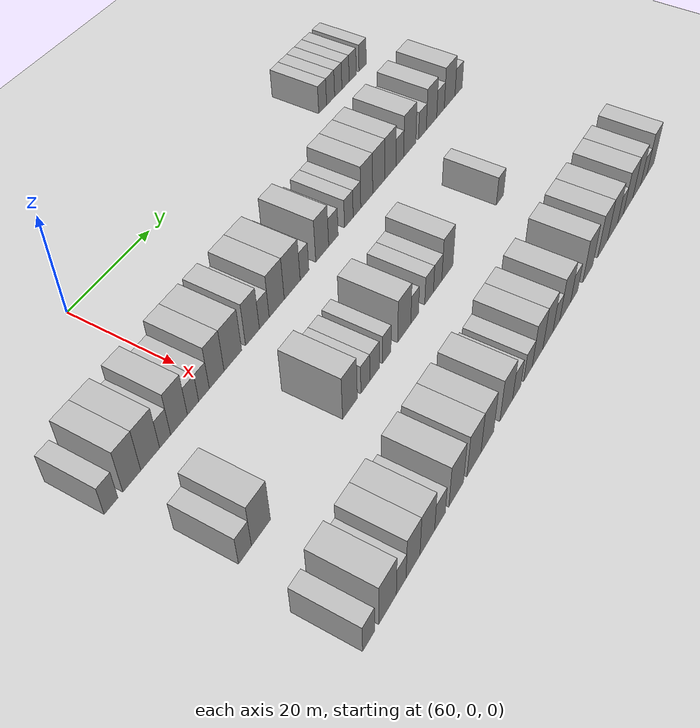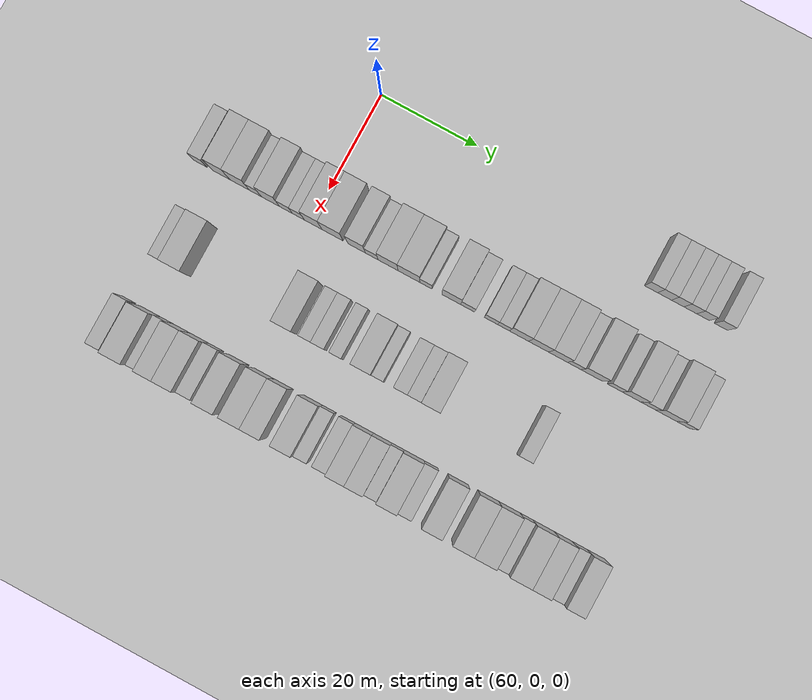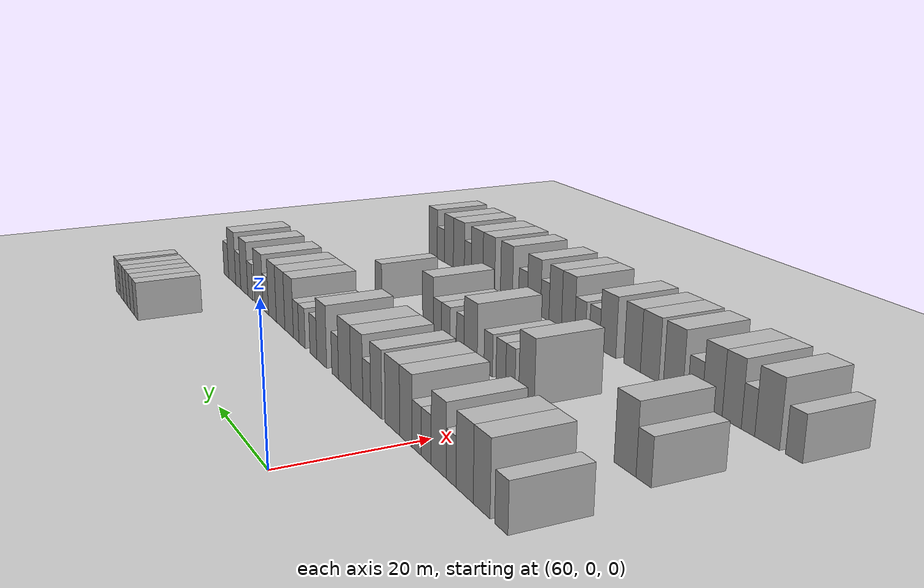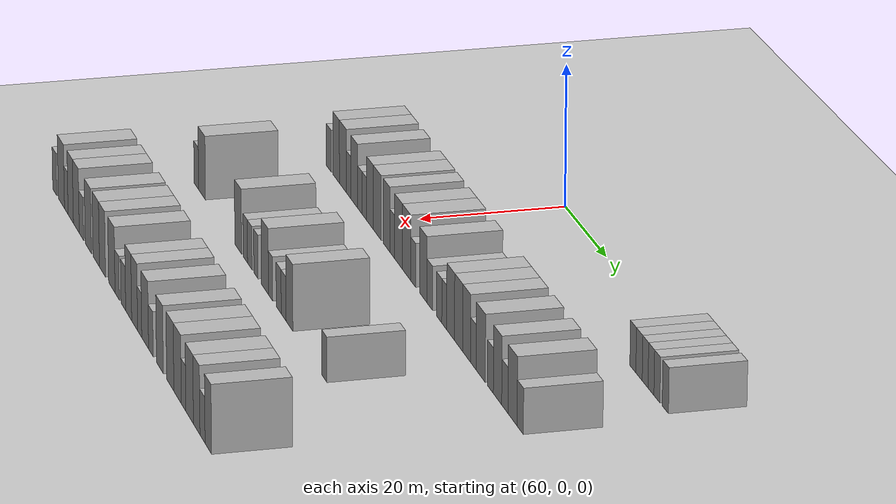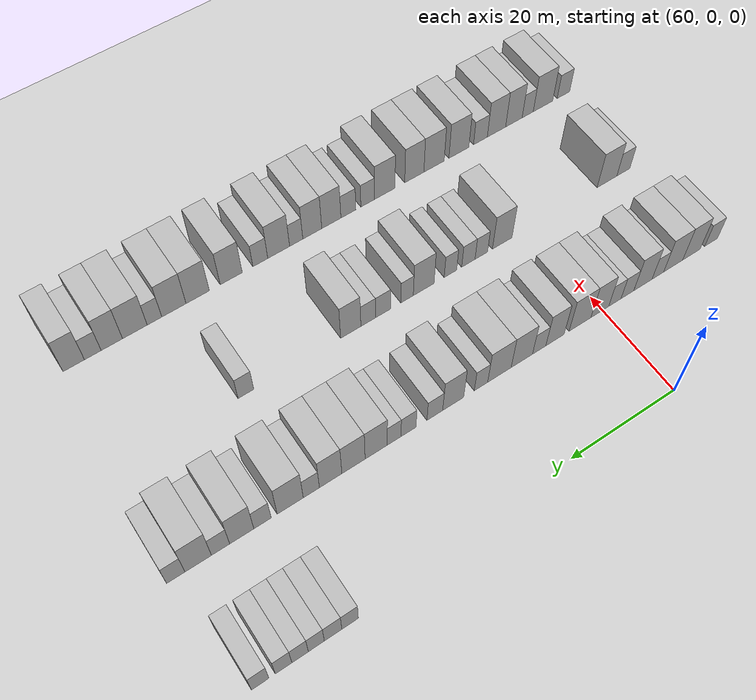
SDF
<sdf version="1.6">
 <world name="default">
  <include>
   <name>ground_plane_2</name>
   <uri>model://HANNAS_ground_plane</uri>
   <pose>100 0 0  0 0 0</pose>
  </include>
  <model name="building_463">
   <static>1</static>
   <pose>63.0000 60.2301 0 0.000000 0.000000 0.000000</pose>
   <link name="link">
    <pose>0 0 3.00 0 0 0</pose>
    <collision name="collision"><geometry><box><size>10.0000 2.7058 6.0000</size></box></geometry></collision>
    <visual name="visual">
     <cast_shadows>0</cast_shadows>
     <geometry><box><size>10.0000 2.7058 6.0000</size></box></geometry>
     <material>
      <script>
       <uri>model://HANNAS_wall/materials/scripts</uri>
       <uri>model://HANNAS_wall/materials/textures</uri>
       <name>vrc/HANNAS_wall</name>
      </script>
     </material>
    </visual>
   </link>
  </model>
  <model name="building_464">
   <static>1</static>
   <pose>63.0000 62.9954 0 0.000000 0.000000 0.000000</pose>
   <link name="link">
    <pose>0 0 3.00 0 0 0</pose>
    <collision name="collision"><geometry><box><size>10.0000 2.8249 6.0000</size></box></geometry></collision>
    <visual name="visual">
     <cast_shadows>0</cast_shadows>
     <geometry><box><size>10.0000 2.8249 6.0000</size></box></geometry>
     <material>
      <script>
       <uri>model://HANNAS_wall/materials/scripts</uri>
       <uri>model://HANNAS_wall/materials/textures</uri>
       <name>vrc/HANNAS_wall</name>
      </script>
     </material>
    </visual>
   </link>
  </model>
  <model name="building_465">
   <static>1</static>
   <pose>63.0000 65.6941 0 0.000000 0.000000 0.000000</pose>
   <link name="link">
    <pose>0 0 3.00 0 0 0</pose>
    <collision name="collision"><geometry><box><size>10.0000 2.5725 6.0000</size></box></geometry></collision>
    <visual name="visual">
     <cast_shadows>0</cast_shadows>
     <geometry><box><size>10.0000 2.5725 6.0000</size></box></geometry>
     <material>
      <script>
       <uri>model://HANNAS_wall/materials/scripts</uri>
       <uri>model://HANNAS_wall/materials/textures</uri>
       <name>vrc/HANNAS_wall</name>
      </script>
     </material>
    </visual>
   </link>
  </model>
  <model name="building_466">
   <static>1</static>
   <pose>63.0000 68.2875 0 0.000000 0.000000 0.000000</pose>
   <link name="link">
    <pose>0 0 3.00 0 0 0</pose>
    <collision name="collision"><geometry><box><size>10.0000 2.6143 6.0000</size></box></geometry></collision>
    <visual name="visual">
     <cast_shadows>0</cast_shadows>
     <geometry><box><size>10.0000 2.6143 6.0000</size></box></geometry>
     <material>
      <script>
       <uri>model://HANNAS_wall/materials/scripts</uri>
       <uri>model://HANNAS_wall/materials/textures</uri>
       <name>vrc/HANNAS_wall</name>
      </script>
     </material>
    </visual>
   </link>
  </model>
  <model name="building_467">
   <static>1</static>
   <pose>63.0000 70.8988 0 0.000000 0.000000 0.000000</pose>
   <link name="link">
    <pose>0 0 3.00 0 0 0</pose>
    <collision name="collision"><geometry><box><size>10.0000 2.6081 6.0000</size></box></geometry></collision>
    <visual name="visual">
     <cast_shadows>0</cast_shadows>
     <geometry><box><size>10.0000 2.6081 6.0000</size></box></geometry>
     <material>
      <script>
       <uri>model://HANNAS_wall/materials/scripts</uri>
       <uri>model://HANNAS_wall/materials/textures</uri>
       <name>vrc/HANNAS_wall</name>
      </script>
     </material>
    </visual>
   </link>
  </model>
  <model name="building_468">
   <static>1</static>
   <pose>63.0000 74.5586 0 0.000000 0.000000 0.000000</pose>
   <link name="link">
    <pose>0 0 3.00 0 0 0</pose>
    <collision name="collision"><geometry><box><size>10.0000 2.7117 6.0000</size></box></geometry></collision>
    <visual name="visual">
     <cast_shadows>0</cast_shadows>
     <geometry><box><size>10.0000 2.7117 6.0000</size></box></geometry>
     <material>
      <script>
       <uri>model://HANNAS_wall/materials/scripts</uri>
       <uri>model://HANNAS_wall/materials/textures</uri>
       <name>vrc/HANNAS_wall</name>
      </script>
     </material>
    </visual>
   </link>
  </model>
  <model name="building_627">
   <static>1</static>
   <pose>82.0000 -22.9002 0 0.000000 0.000000 0.000000</pose>
   <link name="link">
    <pose>0 0 3.00 0 0 0</pose>
    <collision name="collision"><geometry><box><size>10.0000 2.7990 6.0000</size></box></geometry></collision>
    <visual name="visual">
     <cast_shadows>0</cast_shadows>
     <geometry><box><size>10.0000 2.7990 6.0000</size></box></geometry>
     <material>
      <script>
       <uri>model://HANNAS_wall/materials/scripts</uri>
       <uri>model://HANNAS_wall/materials/textures</uri>
       <name>vrc/HANNAS_wall</name>
      </script>
     </material>
    </visual>
   </link>
  </model>
  <model name="building_628">
   <static>1</static>
   <pose>82.0000 -18.6153 0 0.000000 0.000000 0.000000</pose>
   <link name="link">
    <pose>0 0 4.50 0 0 0</pose>
    <collision name="collision"><geometry><box><size>10.0000 3.7706 9.0000</size></box></geometry></collision>
    <visual name="visual">
     <cast_shadows>0</cast_shadows>
     <geometry><box><size>10.0000 3.7706 9.0000</size></box></geometry>
     <material>
      <script>
       <uri>model://HANNAS_wall/materials/scripts</uri>
       <uri>model://HANNAS_wall/materials/textures</uri>
       <name>vrc/HANNAS_wall</name>
      </script>
     </material>
    </visual>
   </link>
  </model>
  <model name="building_629">
   <static>1</static>
   <pose>82.0000 -14.6957 0 0.000000 0.000000 0.000000</pose>
   <link name="link">
    <pose>0 0 4.50 0 0 0</pose>
    <collision name="collision"><geometry><box><size>10.0000 4.0687 9.0000</size></box></geometry></collision>
    <visual name="visual">
     <cast_shadows>0</cast_shadows>
     <geometry><box><size>10.0000 4.0687 9.0000</size></box></geometry>
     <material>
      <script>
       <uri>model://HANNAS_wall/materials/scripts</uri>
       <uri>model://HANNAS_wall/materials/textures</uri>
       <name>vrc/HANNAS_wall</name>
      </script>
     </material>
    </visual>
   </link>
  </model>
  <model name="building_630">
   <static>1</static>
   <pose>82.0000 -11.4387 0 0.000000 0.000000 0.000000</pose>
   <link name="link">
    <pose>0 0 3.00 0 0 0</pose>
    <collision name="collision"><geometry><box><size>10.0000 2.4453 6.0000</size></box></geometry></collision>
    <visual name="visual">
     <cast_shadows>0</cast_shadows>
     <geometry><box><size>10.0000 2.4453 6.0000</size></box></geometry>
     <material>
      <script>
       <uri>model://HANNAS_wall/materials/scripts</uri>
       <uri>model://HANNAS_wall/materials/textures</uri>
       <name>vrc/HANNAS_wall</name>
      </script>
     </material>
    </visual>
   </link>
  </model>
  <model name="building_631">
   <static>1</static>
   <pose>82.0000 -8.3066 0 0.000000 0.000000 0.000000</pose>
   <link name="link">
    <pose>0 0 4.50 0 0 0</pose>
    <collision name="collision"><geometry><box><size>10.0000 3.8190 9.0000</size></box></geometry></collision>
    <visual name="visual">
     <cast_shadows>0</cast_shadows>
     <geometry><box><size>10.0000 3.8190 9.0000</size></box></geometry>
     <material>
      <script>
       <uri>model://HANNAS_wall/materials/scripts</uri>
       <uri>model://HANNAS_wall/materials/textures</uri>
       <name>vrc/HANNAS_wall</name>
      </script>
     </material>
    </visual>
   </link>
  </model>
  <model name="building_632">
   <static>1</static>
   <pose>82.0000 -5.0737 0 0.000000 0.000000 0.000000</pose>
   <link name="link">
    <pose>0 0 3.00 0 0 0</pose>
    <collision name="collision"><geometry><box><size>10.0000 2.6466 6.0000</size></box></geometry></collision>
    <visual name="visual">
     <cast_shadows>0</cast_shadows>
     <geometry><box><size>10.0000 2.6466 6.0000</size></box></geometry>
     <material>
      <script>
       <uri>model://HANNAS_wall/materials/scripts</uri>
       <uri>model://HANNAS_wall/materials/textures</uri>
       <name>vrc/HANNAS_wall</name>
      </script>
     </material>
    </visual>
   </link>
  </model>
  <model name="building_633">
   <static>1</static>
   <pose>82.0000 -2.4838 0 0.000000 0.000000 0.000000</pose>
   <link name="link">
    <pose>0 0 3.00 0 0 0</pose>
    <collision name="collision"><geometry><box><size>10.0000 2.5332 6.0000</size></box></geometry></collision>
    <visual name="visual">
     <cast_shadows>0</cast_shadows>
     <geometry><box><size>10.0000 2.5332 6.0000</size></box></geometry>
     <material>
      <script>
       <uri>model://HANNAS_wall/materials/scripts</uri>
       <uri>model://HANNAS_wall/materials/textures</uri>
       <name>vrc/HANNAS_wall</name>
      </script>
     </material>
    </visual>
   </link>
  </model>
  <model name="building_634">
   <static>1</static>
   <pose>82.0000 0.5848 0 0.000000 0.000000 0.000000</pose>
   <link name="link">
    <pose>0 0 4.50 0 0 0</pose>
    <collision name="collision"><geometry><box><size>10.0000 3.6040 9.0000</size></box></geometry></collision>
    <visual name="visual">
     <cast_shadows>0</cast_shadows>
     <geometry><box><size>10.0000 3.6040 9.0000</size></box></geometry>
     <material>
      <script>
       <uri>model://HANNAS_wall/materials/scripts</uri>
       <uri>model://HANNAS_wall/materials/textures</uri>
       <name>vrc/HANNAS_wall</name>
      </script>
     </material>
    </visual>
   </link>
  </model>
  <model name="building_635">
   <static>1</static>
   <pose>82.0000 4.5910 0 0.000000 0.000000 0.000000</pose>
   <link name="link">
    <pose>0 0 4.50 0 0 0</pose>
    <collision name="collision"><geometry><box><size>10.0000 4.4083 9.0000</size></box></geometry></collision>
    <visual name="visual">
     <cast_shadows>0</cast_shadows>
     <geometry><box><size>10.0000 4.4083 9.0000</size></box></geometry>
     <material>
      <script>
       <uri>model://HANNAS_wall/materials/scripts</uri>
       <uri>model://HANNAS_wall/materials/textures</uri>
       <name>vrc/HANNAS_wall</name>
      </script>
     </material>
    </visual>
   </link>
  </model>
  <model name="building_636">
   <static>1</static>
   <pose>82.0000 9.6081 0 0.000000 0.000000 0.000000</pose>
   <link name="link">
    <pose>0 0 4.50 0 0 0</pose>
    <collision name="collision"><geometry><box><size>10.0000 3.6258 9.0000</size></box></geometry></collision>
    <visual name="visual">
     <cast_shadows>0</cast_shadows>
     <geometry><box><size>10.0000 3.6258 9.0000</size></box></geometry>
     <material>
      <script>
       <uri>model://HANNAS_wall/materials/scripts</uri>
       <uri>model://HANNAS_wall/materials/textures</uri>
       <name>vrc/HANNAS_wall</name>
      </script>
     </material>
    </visual>
   </link>
  </model>
  <model name="building_637">
   <static>1</static>
   <pose>82.0000 12.7259 0 0.000000 0.000000 0.000000</pose>
   <link name="link">
    <pose>0 0 3.00 0 0 0</pose>
    <collision name="collision"><geometry><box><size>10.0000 2.6097 6.0000</size></box></geometry></collision>
    <visual name="visual">
     <cast_shadows>0</cast_shadows>
     <geometry><box><size>10.0000 2.6097 6.0000</size></box></geometry>
     <material>
      <script>
       <uri>model://HANNAS_wall/materials/scripts</uri>
       <uri>model://HANNAS_wall/materials/textures</uri>
       <name>vrc/HANNAS_wall</name>
      </script>
     </material>
    </visual>
   </link>
  </model>
  <model name="building_638">
   <static>1</static>
   <pose>82.0000 16.1019 0 0.000000 0.000000 0.000000</pose>
   <link name="link">
    <pose>0 0 4.50 0 0 0</pose>
    <collision name="collision"><geometry><box><size>10.0000 4.1423 9.0000</size></box></geometry></collision>
    <visual name="visual">
     <cast_shadows>0</cast_shadows>
     <geometry><box><size>10.0000 4.1423 9.0000</size></box></geometry>
     <material>
      <script>
       <uri>model://HANNAS_wall/materials/scripts</uri>
       <uri>model://HANNAS_wall/materials/textures</uri>
       <name>vrc/HANNAS_wall</name>
      </script>
     </material>
    </visual>
   </link>
  </model>
  <model name="building_639">
   <static>1</static>
   <pose>82.0000 20.4220 0 0.000000 0.000000 0.000000</pose>
   <link name="link">
    <pose>0 0 4.50 0 0 0</pose>
    <collision name="collision"><geometry><box><size>10.0000 4.4980 9.0000</size></box></geometry></collision>
    <visual name="visual">
     <cast_shadows>0</cast_shadows>
     <geometry><box><size>10.0000 4.4980 9.0000</size></box></geometry>
     <material>
      <script>
       <uri>model://HANNAS_wall/materials/scripts</uri>
       <uri>model://HANNAS_wall/materials/textures</uri>
       <name>vrc/HANNAS_wall</name>
      </script>
     </material>
    </visual>
   </link>
  </model>
  <model name="building_640">
   <static>1</static>
   <pose>82.0000 23.9381 0 0.000000 0.000000 0.000000</pose>
   <link name="link">
    <pose>0 0 3.00 0 0 0</pose>
    <collision name="collision"><geometry><box><size>10.0000 2.5341 6.0000</size></box></geometry></collision>
    <visual name="visual">
     <cast_shadows>0</cast_shadows>
     <geometry><box><size>10.0000 2.5341 6.0000</size></box></geometry>
     <material>
      <script>
       <uri>model://HANNAS_wall/materials/scripts</uri>
       <uri>model://HANNAS_wall/materials/textures</uri>
       <name>vrc/HANNAS_wall</name>
      </script>
     </material>
    </visual>
   </link>
  </model>
  <model name="building_641">
   <static>1</static>
   <pose>82.0000 29.1589 0 0.000000 0.000000 0.000000</pose>
   <link name="link">
    <pose>0 0 4.50 0 0 0</pose>
    <collision name="collision"><geometry><box><size>10.0000 3.9074 9.0000</size></box></geometry></collision>
    <visual name="visual">
     <cast_shadows>0</cast_shadows>
     <geometry><box><size>10.0000 3.9074 9.0000</size></box></geometry>
     <material>
      <script>
       <uri>model://HANNAS_wall/materials/scripts</uri>
       <uri>model://HANNAS_wall/materials/textures</uri>
       <name>vrc/HANNAS_wall</name>
      </script>
     </material>
    </visual>
   </link>
  </model>
  <model name="building_642">
   <static>1</static>
   <pose>82.0000 32.5577 0 0.000000 0.000000 0.000000</pose>
   <link name="link">
    <pose>0 0 3.00 0 0 0</pose>
    <collision name="collision"><geometry><box><size>10.0000 2.8900 6.0000</size></box></geometry></collision>
    <visual name="visual">
     <cast_shadows>0</cast_shadows>
     <geometry><box><size>10.0000 2.8900 6.0000</size></box></geometry>
     <material>
      <script>
       <uri>model://HANNAS_wall/materials/scripts</uri>
       <uri>model://HANNAS_wall/materials/textures</uri>
       <name>vrc/HANNAS_wall</name>
      </script>
     </material>
    </visual>
   </link>
  </model>
  <model name="building_643">
   <static>1</static>
   <pose>82.0000 37.3732 0 0.000000 0.000000 0.000000</pose>
   <link name="link">
    <pose>0 0 3.00 0 0 0</pose>
    <collision name="collision"><geometry><box><size>10.0000 2.7411 6.0000</size></box></geometry></collision>
    <visual name="visual">
     <cast_shadows>0</cast_shadows>
     <geometry><box><size>10.0000 2.7411 6.0000</size></box></geometry>
     <material>
      <script>
       <uri>model://HANNAS_wall/materials/scripts</uri>
       <uri>model://HANNAS_wall/materials/textures</uri>
       <name>vrc/HANNAS_wall</name>
      </script>
     </material>
    </visual>
   </link>
  </model>
  <model name="building_644">
   <static>1</static>
   <pose>82.0000 39.9740 0 0.000000 0.000000 0.000000</pose>
   <link name="link">
    <pose>0 0 3.00 0 0 0</pose>
    <collision name="collision"><geometry><box><size>10.0000 2.4605 6.0000</size></box></geometry></collision>
    <visual name="visual">
     <cast_shadows>0</cast_shadows>
     <geometry><box><size>10.0000 2.4605 6.0000</size></box></geometry>
     <material>
      <script>
       <uri>model://HANNAS_wall/materials/scripts</uri>
       <uri>model://HANNAS_wall/materials/textures</uri>
       <name>vrc/HANNAS_wall</name>
      </script>
     </material>
    </visual>
   </link>
  </model>
  <model name="building_645">
   <static>1</static>
   <pose>82.0000 43.1719 0 0.000000 0.000000 0.000000</pose>
   <link name="link">
    <pose>0 0 4.50 0 0 0</pose>
    <collision name="collision"><geometry><box><size>10.0000 3.9352 9.0000</size></box></geometry></collision>
    <visual name="visual">
     <cast_shadows>0</cast_shadows>
     <geometry><box><size>10.0000 3.9352 9.0000</size></box></geometry>
     <material>
      <script>
       <uri>model://HANNAS_wall/materials/scripts</uri>
       <uri>model://HANNAS_wall/materials/textures</uri>
       <name>vrc/HANNAS_wall</name>
      </script>
     </material>
    </visual>
   </link>
  </model>
  <model name="building_646">
   <static>1</static>
   <pose>82.0000 47.1830 0 0.000000 0.000000 0.000000</pose>
   <link name="link">
    <pose>0 0 4.50 0 0 0</pose>
    <collision name="collision"><geometry><box><size>10.0000 4.0870 9.0000</size></box></geometry></collision>
    <visual name="visual">
     <cast_shadows>0</cast_shadows>
     <geometry><box><size>10.0000 4.0870 9.0000</size></box></geometry>
     <material>
      <script>
       <uri>model://HANNAS_wall/materials/scripts</uri>
       <uri>model://HANNAS_wall/materials/textures</uri>
       <name>vrc/HANNAS_wall</name>
      </script>
     </material>
    </visual>
   </link>
  </model>
  <model name="building_647">
   <static>1</static>
   <pose>82.0000 51.1674 0 0.000000 0.000000 0.000000</pose>
   <link name="link">
    <pose>0 0 4.50 0 0 0</pose>
    <collision name="collision"><geometry><box><size>10.0000 3.8818 9.0000</size></box></geometry></collision>
    <visual name="visual">
     <cast_shadows>0</cast_shadows>
     <geometry><box><size>10.0000 3.8818 9.0000</size></box></geometry>
     <material>
      <script>
       <uri>model://HANNAS_wall/materials/scripts</uri>
       <uri>model://HANNAS_wall/materials/textures</uri>
       <name>vrc/HANNAS_wall</name>
      </script>
     </material>
    </visual>
   </link>
  </model>
  <model name="building_648">
   <static>1</static>
   <pose>82.0000 54.4906 0 0.000000 0.000000 0.000000</pose>
   <link name="link">
    <pose>0 0 3.00 0 0 0</pose>
    <collision name="collision"><geometry><box><size>10.0000 2.7648 6.0000</size></box></geometry></collision>
    <visual name="visual">
     <cast_shadows>0</cast_shadows>
     <geometry><box><size>10.0000 2.7648 6.0000</size></box></geometry>
     <material>
      <script>
       <uri>model://HANNAS_wall/materials/scripts</uri>
       <uri>model://HANNAS_wall/materials/textures</uri>
       <name>vrc/HANNAS_wall</name>
      </script>
     </material>
    </visual>
   </link>
  </model>
  <model name="building_649">
   <static>1</static>
   <pose>82.0000 58.0892 0 0.000000 0.000000 0.000000</pose>
   <link name="link">
    <pose>0 0 4.50 0 0 0</pose>
    <collision name="collision"><geometry><box><size>10.0000 4.4324 9.0000</size></box></geometry></collision>
    <visual name="visual">
     <cast_shadows>0</cast_shadows>
     <geometry><box><size>10.0000 4.4324 9.0000</size></box></geometry>
     <material>
      <script>
       <uri>model://HANNAS_wall/materials/scripts</uri>
       <uri>model://HANNAS_wall/materials/textures</uri>
       <name>vrc/HANNAS_wall</name>
      </script>
     </material>
    </visual>
   </link>
  </model>
  <model name="building_650">
   <static>1</static>
   <pose>82.0000 62.7515 0 0.000000 0.000000 0.000000</pose>
   <link name="link">
    <pose>0 0 3.00 0 0 0</pose>
    <collision name="collision"><geometry><box><size>10.0000 2.8923 6.0000</size></box></geometry></collision>
    <visual name="visual">
     <cast_shadows>0</cast_shadows>
     <geometry><box><size>10.0000 2.8923 6.0000</size></box></geometry>
     <material>
      <script>
       <uri>model://HANNAS_wall/materials/scripts</uri>
       <uri>model://HANNAS_wall/materials/textures</uri>
       <name>vrc/HANNAS_wall</name>
      </script>
     </material>
    </visual>
   </link>
  </model>
  <model name="building_651">
   <static>1</static>
   <pose>82.0000 66.1894 0 0.000000 0.000000 0.000000</pose>
   <link name="link">
    <pose>0 0 4.50 0 0 0</pose>
    <collision name="collision"><geometry><box><size>10.0000 3.9835 9.0000</size></box></geometry></collision>
    <visual name="visual">
     <cast_shadows>0</cast_shadows>
     <geometry><box><size>10.0000 3.9835 9.0000</size></box></geometry>
     <material>
      <script>
       <uri>model://HANNAS_wall/materials/scripts</uri>
       <uri>model://HANNAS_wall/materials/textures</uri>
       <name>vrc/HANNAS_wall</name>
      </script>
     </material>
    </visual>
   </link>
  </model>
  <model name="building_652">
   <static>1</static>
   <pose>82.0000 69.6668 0 0.000000 0.000000 0.000000</pose>
   <link name="link">
    <pose>0 0 3.00 0 0 0</pose>
    <collision name="collision"><geometry><box><size>10.0000 2.9712 6.0000</size></box></geometry></collision>
    <visual name="visual">
     <cast_shadows>0</cast_shadows>
     <geometry><box><size>10.0000 2.9712 6.0000</size></box></geometry>
     <material>
      <script>
       <uri>model://HANNAS_wall/materials/scripts</uri>
       <uri>model://HANNAS_wall/materials/textures</uri>
       <name>vrc/HANNAS_wall</name>
      </script>
     </material>
    </visual>
   </link>
  </model>
  <model name="building_653">
   <static>1</static>
   <pose>82.0000 73.2908 0 0.000000 0.000000 0.000000</pose>
   <link name="link">
    <pose>0 0 4.50 0 0 0</pose>
    <collision name="collision"><geometry><box><size>10.0000 4.2769 9.0000</size></box></geometry></collision>
    <visual name="visual">
     <cast_shadows>0</cast_shadows>
     <geometry><box><size>10.0000 4.2769 9.0000</size></box></geometry>
     <material>
      <script>
       <uri>model://HANNAS_wall/materials/scripts</uri>
       <uri>model://HANNAS_wall/materials/textures</uri>
       <name>vrc/HANNAS_wall</name>
      </script>
     </material>
    </visual>
   </link>
  </model>
  <model name="building_654">
   <static>1</static>
   <pose>82.0000 76.8844 0 0.000000 0.000000 0.000000</pose>
   <link name="link">
    <pose>0 0 3.00 0 0 0</pose>
    <collision name="collision"><geometry><box><size>10.0000 2.9103 6.0000</size></box></geometry></collision>
    <visual name="visual">
     <cast_shadows>0</cast_shadows>
     <geometry><box><size>10.0000 2.9103 6.0000</size></box></geometry>
     <material>
      <script>
       <uri>model://HANNAS_wall/materials/scripts</uri>
       <uri>model://HANNAS_wall/materials/textures</uri>
       <name>vrc/HANNAS_wall</name>
      </script>
     </material>
    </visual>
   </link>
  </model>
  <model name="building_811">
   <static>1</static>
   <pose>101.0000 -20.1653 0 0.000000 0.000000 0.000000</pose>
   <link name="link">
    <pose>0 0 3.00 0 0 0</pose>
    <collision name="collision"><geometry><box><size>10.0000 2.8592 6.0000</size></box></geometry></collision>
    <visual name="visual">
     <cast_shadows>0</cast_shadows>
     <geometry><box><size>10.0000 2.8592 6.0000</size></box></geometry>
     <material>
      <script>
       <uri>model://HANNAS_wall/materials/scripts</uri>
       <uri>model://HANNAS_wall/materials/textures</uri>
       <name>vrc/HANNAS_wall</name>
      </script>
     </material>
    </visual>
   </link>
  </model>
  <model name="building_812">
   <static>1</static>
   <pose>101.0000 -16.5824 0 0.000000 0.000000 0.000000</pose>
   <link name="link">
    <pose>0 0 4.50 0 0 0</pose>
    <collision name="collision"><geometry><box><size>10.0000 4.3066 9.0000</size></box></geometry></collision>
    <visual name="visual">
     <cast_shadows>0</cast_shadows>
     <geometry><box><size>10.0000 4.3066 9.0000</size></box></geometry>
     <material>
      <script>
       <uri>model://HANNAS_wall/materials/scripts</uri>
       <uri>model://HANNAS_wall/materials/textures</uri>
       <name>vrc/HANNAS_wall</name>
      </script>
     </material>
    </visual>
   </link>
  </model>
  <model name="building_813">
   <static>1</static>
   <pose>101.0000 5.5743 0 0.000000 0.000000 0.000000</pose>
   <link name="link">
    <pose>0 0 4.50 0 0 0</pose>
    <collision name="collision"><geometry><box><size>10.0000 4.0023 9.0000</size></box></geometry></collision>
    <visual name="visual">
     <cast_shadows>0</cast_shadows>
     <geometry><box><size>10.0000 4.0023 9.0000</size></box></geometry>
     <material>
      <script>
       <uri>model://HANNAS_wall/materials/scripts</uri>
       <uri>model://HANNAS_wall/materials/textures</uri>
       <name>vrc/HANNAS_wall</name>
      </script>
     </material>
    </visual>
   </link>
  </model>
  <model name="building_814">
   <static>1</static>
   <pose>101.0000 9.8368 0 0.000000 0.000000 0.000000</pose>
   <link name="link">
    <pose>0 0 3.00 0 0 0</pose>
    <collision name="collision"><geometry><box><size>10.0000 2.5226 6.0000</size></box></geometry></collision>
    <visual name="visual">
     <cast_shadows>0</cast_shadows>
     <geometry><box><size>10.0000 2.5226 6.0000</size></box></geometry>
     <material>
      <script>
       <uri>model://HANNAS_wall/materials/scripts</uri>
       <uri>model://HANNAS_wall/materials/textures</uri>
       <name>vrc/HANNAS_wall</name>
      </script>
     </material>
    </visual>
   </link>
  </model>
  <model name="building_815">
   <static>1</static>
   <pose>101.0000 12.4356 0 0.000000 0.000000 0.000000</pose>
   <link name="link">
    <pose>0 0 3.00 0 0 0</pose>
    <collision name="collision"><geometry><box><size>10.0000 2.6750 6.0000</size></box></geometry></collision>
    <visual name="visual">
     <cast_shadows>0</cast_shadows>
     <geometry><box><size>10.0000 2.6750 6.0000</size></box></geometry>
     <material>
      <script>
       <uri>model://HANNAS_wall/materials/scripts</uri>
       <uri>model://HANNAS_wall/materials/textures</uri>
       <name>vrc/HANNAS_wall</name>
      </script>
     </material>
    </visual>
   </link>
  </model>
  <model name="building_816">
   <static>1</static>
   <pose>101.0000 16.0113 0 0.000000 0.000000 0.000000</pose>
   <link name="link">
    <pose>0 0 3.00 0 0 0</pose>
    <collision name="collision"><geometry><box><size>10.0000 2.4763 6.0000</size></box></geometry></collision>
    <visual name="visual">
     <cast_shadows>0</cast_shadows>
     <geometry><box><size>10.0000 2.4763 6.0000</size></box></geometry>
     <material>
      <script>
       <uri>model://HANNAS_wall/materials/scripts</uri>
       <uri>model://HANNAS_wall/materials/textures</uri>
       <name>vrc/HANNAS_wall</name>
      </script>
     </material>
    </visual>
   </link>
  </model>
  <model name="building_817">
   <static>1</static>
   <pose>101.0000 21.2736 0 0.000000 0.000000 0.000000</pose>
   <link name="link">
    <pose>0 0 4.50 0 0 0</pose>
    <collision name="collision"><geometry><box><size>10.0000 4.0484 9.0000</size></box></geometry></collision>
    <visual name="visual">
     <cast_shadows>0</cast_shadows>
     <geometry><box><size>10.0000 4.0484 9.0000</size></box></geometry>
     <material>
      <script>
       <uri>model://HANNAS_wall/materials/scripts</uri>
       <uri>model://HANNAS_wall/materials/textures</uri>
       <name>vrc/HANNAS_wall</name>
      </script>
     </material>
    </visual>
   </link>
  </model>
  <model name="building_818">
   <static>1</static>
   <pose>101.0000 24.5033 0 0.000000 0.000000 0.000000</pose>
   <link name="link">
    <pose>0 0 3.00 0 0 0</pose>
    <collision name="collision"><geometry><box><size>10.0000 2.4109 6.0000</size></box></geometry></collision>
    <visual name="visual">
     <cast_shadows>0</cast_shadows>
     <geometry><box><size>10.0000 2.4109 6.0000</size></box></geometry>
     <material>
      <script>
       <uri>model://HANNAS_wall/materials/scripts</uri>
       <uri>model://HANNAS_wall/materials/textures</uri>
       <name>vrc/HANNAS_wall</name>
      </script>
     </material>
    </visual>
   </link>
  </model>
  <model name="building_819">
   <static>1</static>
   <pose>101.0000 29.1254 0 0.000000 0.000000 0.000000</pose>
   <link name="link">
    <pose>0 0 3.00 0 0 0</pose>
    <collision name="collision"><geometry><box><size>10.0000 2.8334 6.0000</size></box></geometry></collision>
    <visual name="visual">
     <cast_shadows>0</cast_shadows>
     <geometry><box><size>10.0000 2.8334 6.0000</size></box></geometry>
     <material>
      <script>
       <uri>model://HANNAS_wall/materials/scripts</uri>
       <uri>model://HANNAS_wall/materials/textures</uri>
       <name>vrc/HANNAS_wall</name>
      </script>
     </material>
    </visual>
   </link>
  </model>
  <model name="building_820">
   <static>1</static>
   <pose>101.0000 31.9287 0 0.000000 0.000000 0.000000</pose>
   <link name="link">
    <pose>0 0 3.00 0 0 0</pose>
    <collision name="collision"><geometry><box><size>10.0000 2.7732 6.0000</size></box></geometry></collision>
    <visual name="visual">
     <cast_shadows>0</cast_shadows>
     <geometry><box><size>10.0000 2.7732 6.0000</size></box></geometry>
     <material>
      <script>
       <uri>model://HANNAS_wall/materials/scripts</uri>
       <uri>model://HANNAS_wall/materials/textures</uri>
       <name>vrc/HANNAS_wall</name>
      </script>
     </material>
    </visual>
   </link>
  </model>
  <model name="building_821">
   <static>1</static>
   <pose>101.0000 35.2038 0 0.000000 0.000000 0.000000</pose>
   <link name="link">
    <pose>0 0 4.50 0 0 0</pose>
    <collision name="collision"><geometry><box><size>10.0000 3.7769 9.0000</size></box></geometry></collision>
    <visual name="visual">
     <cast_shadows>0</cast_shadows>
     <geometry><box><size>10.0000 3.7769 9.0000</size></box></geometry>
     <material>
      <script>
       <uri>model://HANNAS_wall/materials/scripts</uri>
       <uri>model://HANNAS_wall/materials/textures</uri>
       <name>vrc/HANNAS_wall</name>
      </script>
     </material>
    </visual>
   </link>
  </model>
  <model name="building_822">
   <static>1</static>
   <pose>101.0000 54.2547 0 0.000000 0.000000 0.000000</pose>
   <link name="link">
    <pose>0 0 3.00 0 0 0</pose>
    <collision name="collision"><geometry><box><size>10.0000 2.7750 6.0000</size></box></geometry></collision>
    <visual name="visual">
     <cast_shadows>0</cast_shadows>
     <geometry><box><size>10.0000 2.7750 6.0000</size></box></geometry>
     <material>
      <script>
       <uri>model://HANNAS_wall/materials/scripts</uri>
       <uri>model://HANNAS_wall/materials/textures</uri>
       <name>vrc/HANNAS_wall</name>
      </script>
     </material>
    </visual>
   </link>
  </model>
  <model name="building_973">
   <static>1</static>
   <pose>120.0000 -22.2985 0 0.000000 0.000000 0.000000</pose>
   <link name="link">
    <pose>0 0 3.00 0 0 0</pose>
    <collision name="collision"><geometry><box><size>10.0000 2.8247 6.0000</size></box></geometry></collision>
    <visual name="visual">
     <cast_shadows>0</cast_shadows>
     <geometry><box><size>10.0000 2.8247 6.0000</size></box></geometry>
     <material>
      <script>
       <uri>model://HANNAS_wall/materials/scripts</uri>
       <uri>model://HANNAS_wall/materials/textures</uri>
       <name>vrc/HANNAS_wall</name>
      </script>
     </material>
    </visual>
   </link>
  </model>
  <model name="building_974">
   <static>1</static>
   <pose>120.0000 -17.7213 0 0.000000 0.000000 0.000000</pose>
   <link name="link">
    <pose>0 0 4.50 0 0 0</pose>
    <collision name="collision"><geometry><box><size>10.0000 4.3298 9.0000</size></box></geometry></collision>
    <visual name="visual">
     <cast_shadows>0</cast_shadows>
     <geometry><box><size>10.0000 4.3298 9.0000</size></box></geometry>
     <material>
      <script>
       <uri>model://HANNAS_wall/materials/scripts</uri>
       <uri>model://HANNAS_wall/materials/textures</uri>
       <name>vrc/HANNAS_wall</name>
      </script>
     </material>
    </visual>
   </link>
  </model>
  <model name="building_975">
   <static>1</static>
   <pose>120.0000 -14.3290 0 0.000000 0.000000 0.000000</pose>
   <link name="link">
    <pose>0 0 3.00 0 0 0</pose>
    <collision name="collision"><geometry><box><size>10.0000 2.4548 6.0000</size></box></geometry></collision>
    <visual name="visual">
     <cast_shadows>0</cast_shadows>
     <geometry><box><size>10.0000 2.4548 6.0000</size></box></geometry>
     <material>
      <script>
       <uri>model://HANNAS_wall/materials/scripts</uri>
       <uri>model://HANNAS_wall/materials/textures</uri>
       <name>vrc/HANNAS_wall</name>
      </script>
     </material>
    </visual>
   </link>
  </model>
  <model name="building_976">
   <static>1</static>
   <pose>120.0000 -11.2874 0 0.000000 0.000000 0.000000</pose>
   <link name="link">
    <pose>0 0 4.50 0 0 0</pose>
    <collision name="collision"><geometry><box><size>10.0000 3.6283 9.0000</size></box></geometry></collision>
    <visual name="visual">
     <cast_shadows>0</cast_shadows>
     <geometry><box><size>10.0000 3.6283 9.0000</size></box></geometry>
     <material>
      <script>
       <uri>model://HANNAS_wall/materials/scripts</uri>
       <uri>model://HANNAS_wall/materials/textures</uri>
       <name>vrc/HANNAS_wall</name>
      </script>
     </material>
    </visual>
   </link>
  </model>
  <model name="building_977">
   <static>1</static>
   <pose>120.0000 -7.4917 0 0.000000 0.000000 0.000000</pose>
   <link name="link">
    <pose>0 0 4.50 0 0 0</pose>
    <collision name="collision"><geometry><box><size>10.0000 3.9632 9.0000</size></box></geometry></collision>
    <visual name="visual">
     <cast_shadows>0</cast_shadows>
     <geometry><box><size>10.0000 3.9632 9.0000</size></box></geometry>
     <material>
      <script>
       <uri>model://HANNAS_wall/materials/scripts</uri>
       <uri>model://HANNAS_wall/materials/textures</uri>
       <name>vrc/HANNAS_wall</name>
      </script>
     </material>
    </visual>
   </link>
  </model>
  <model name="building_978">
   <static>1</static>
   <pose>120.0000 -4.0285 0 0.000000 0.000000 0.000000</pose>
   <link name="link">
    <pose>0 0 3.00 0 0 0</pose>
    <collision name="collision"><geometry><box><size>10.0000 2.9633 6.0000</size></box></geometry></collision>
    <visual name="visual">
     <cast_shadows>0</cast_shadows>
     <geometry><box><size>10.0000 2.9633 6.0000</size></box></geometry>
     <material>
      <script>
       <uri>model://HANNAS_wall/materials/scripts</uri>
       <uri>model://HANNAS_wall/materials/textures</uri>
       <name>vrc/HANNAS_wall</name>
      </script>
     </material>
    </visual>
   </link>
  </model>
  <model name="building_979">
   <static>1</static>
   <pose>120.0000 0.5634 0 0.000000 0.000000 0.000000</pose>
   <link name="link">
    <pose>0 0 4.50 0 0 0</pose>
    <collision name="collision"><geometry><box><size>10.0000 4.2205 9.0000</size></box></geometry></collision>
    <visual name="visual">
     <cast_shadows>0</cast_shadows>
     <geometry><box><size>10.0000 4.2205 9.0000</size></box></geometry>
     <material>
      <script>
       <uri>model://HANNAS_wall/materials/scripts</uri>
       <uri>model://HANNAS_wall/materials/textures</uri>
       <name>vrc/HANNAS_wall</name>
      </script>
     </material>
    </visual>
   </link>
  </model>
  <model name="building_980">
   <static>1</static>
   <pose>120.0000 5.7918 0 0.000000 0.000000 0.000000</pose>
   <link name="link">
    <pose>0 0 4.50 0 0 0</pose>
    <collision name="collision"><geometry><box><size>10.0000 4.2363 9.0000</size></box></geometry></collision>
    <visual name="visual">
     <cast_shadows>0</cast_shadows>
     <geometry><box><size>10.0000 4.2363 9.0000</size></box></geometry>
     <material>
      <script>
       <uri>model://HANNAS_wall/materials/scripts</uri>
       <uri>model://HANNAS_wall/materials/textures</uri>
       <name>vrc/HANNAS_wall</name>
      </script>
     </material>
    </visual>
   </link>
  </model>
  <model name="building_981">
   <static>1</static>
   <pose>120.0000 9.8851 0 0.000000 0.000000 0.000000</pose>
   <link name="link">
    <pose>0 0 4.50 0 0 0</pose>
    <collision name="collision"><geometry><box><size>10.0000 3.9503 9.0000</size></box></geometry></collision>
    <visual name="visual">
     <cast_shadows>0</cast_shadows>
     <geometry><box><size>10.0000 3.9503 9.0000</size></box></geometry>
     <material>
      <script>
       <uri>model://HANNAS_wall/materials/scripts</uri>
       <uri>model://HANNAS_wall/materials/textures</uri>
       <name>vrc/HANNAS_wall</name>
      </script>
     </material>
    </visual>
   </link>
  </model>
  <model name="building_982">
   <static>1</static>
   <pose>120.0000 15.9230 0 0.000000 0.000000 0.000000</pose>
   <link name="link">
    <pose>0 0 4.50 0 0 0</pose>
    <collision name="collision"><geometry><box><size>10.0000 4.1255 9.0000</size></box></geometry></collision>
    <visual name="visual">
     <cast_shadows>0</cast_shadows>
     <geometry><box><size>10.0000 4.1255 9.0000</size></box></geometry>
     <material>
      <script>
       <uri>model://HANNAS_wall/materials/scripts</uri>
       <uri>model://HANNAS_wall/materials/textures</uri>
       <name>vrc/HANNAS_wall</name>
      </script>
     </material>
    </visual>
   </link>
  </model>
  <model name="building_983">
   <static>1</static>
   <pose>120.0000 19.3677 0 0.000000 0.000000 0.000000</pose>
   <link name="link">
    <pose>0 0 3.00 0 0 0</pose>
    <collision name="collision"><geometry><box><size>10.0000 2.7640 6.0000</size></box></geometry></collision>
    <visual name="visual">
     <cast_shadows>0</cast_shadows>
     <geometry><box><size>10.0000 2.7640 6.0000</size></box></geometry>
     <material>
      <script>
       <uri>model://HANNAS_wall/materials/scripts</uri>
       <uri>model://HANNAS_wall/materials/textures</uri>
       <name>vrc/HANNAS_wall</name>
      </script>
     </material>
    </visual>
   </link>
  </model>
  <model name="building_984">
   <static>1</static>
   <pose>120.0000 23.2313 0 0.000000 0.000000 0.000000</pose>
   <link name="link">
    <pose>0 0 3.00 0 0 0</pose>
    <collision name="collision"><geometry><box><size>10.0000 2.9631 6.0000</size></box></geometry></collision>
    <visual name="visual">
     <cast_shadows>0</cast_shadows>
     <geometry><box><size>10.0000 2.9631 6.0000</size></box></geometry>
     <material>
      <script>
       <uri>model://HANNAS_wall/materials/scripts</uri>
       <uri>model://HANNAS_wall/materials/textures</uri>
       <name>vrc/HANNAS_wall</name>
      </script>
     </material>
    </visual>
   </link>
  </model>
  <model name="building_985">
   <static>1</static>
   <pose>120.0000 26.5953 0 0.000000 0.000000 0.000000</pose>
   <link name="link">
    <pose>0 0 4.50 0 0 0</pose>
    <collision name="collision"><geometry><box><size>10.0000 3.7649 9.0000</size></box></geometry></collision>
    <visual name="visual">
     <cast_shadows>0</cast_shadows>
     <geometry><box><size>10.0000 3.7649 9.0000</size></box></geometry>
     <material>
      <script>
       <uri>model://HANNAS_wall/materials/scripts</uri>
       <uri>model://HANNAS_wall/materials/textures</uri>
       <name>vrc/HANNAS_wall</name>
      </script>
     </material>
    </visual>
   </link>
  </model>
  <model name="building_986">
   <static>1</static>
   <pose>120.0000 30.3191 0 0.000000 0.000000 0.000000</pose>
   <link name="link">
    <pose>0 0 4.50 0 0 0</pose>
    <collision name="collision"><geometry><box><size>10.0000 3.6825 9.0000</size></box></geometry></collision>
    <visual name="visual">
     <cast_shadows>0</cast_shadows>
     <geometry><box><size>10.0000 3.6825 9.0000</size></box></geometry>
     <material>
      <script>
       <uri>model://HANNAS_wall/materials/scripts</uri>
       <uri>model://HANNAS_wall/materials/textures</uri>
       <name>vrc/HANNAS_wall</name>
      </script>
     </material>
    </visual>
   </link>
  </model>
  <model name="building_987">
   <static>1</static>
   <pose>120.0000 33.4351 0 0.000000 0.000000 0.000000</pose>
   <link name="link">
    <pose>0 0 3.00 0 0 0</pose>
    <collision name="collision"><geometry><box><size>10.0000 2.5495 6.0000</size></box></geometry></collision>
    <visual name="visual">
     <cast_shadows>0</cast_shadows>
     <geometry><box><size>10.0000 2.5495 6.0000</size></box></geometry>
     <material>
      <script>
       <uri>model://HANNAS_wall/materials/scripts</uri>
       <uri>model://HANNAS_wall/materials/textures</uri>
       <name>vrc/HANNAS_wall</name>
      </script>
     </material>
    </visual>
   </link>
  </model>
  <model name="building_988">
   <static>1</static>
   <pose>120.0000 36.7935 0 0.000000 0.000000 0.000000</pose>
   <link name="link">
    <pose>0 0 4.50 0 0 0</pose>
    <collision name="collision"><geometry><box><size>10.0000 4.1673 9.0000</size></box></geometry></collision>
    <visual name="visual">
     <cast_shadows>0</cast_shadows>
     <geometry><box><size>10.0000 4.1673 9.0000</size></box></geometry>
     <material>
      <script>
       <uri>model://HANNAS_wall/materials/scripts</uri>
       <uri>model://HANNAS_wall/materials/textures</uri>
       <name>vrc/HANNAS_wall</name>
      </script>
     </material>
    </visual>
   </link>
  </model>
  <model name="building_989">
   <static>1</static>
   <pose>120.0000 40.2825 0 0.000000 0.000000 0.000000</pose>
   <link name="link">
    <pose>0 0 3.00 0 0 0</pose>
    <collision name="collision"><geometry><box><size>10.0000 2.8107 6.0000</size></box></geometry></collision>
    <visual name="visual">
     <cast_shadows>0</cast_shadows>
     <geometry><box><size>10.0000 2.8107 6.0000</size></box></geometry>
     <material>
      <script>
       <uri>model://HANNAS_wall/materials/scripts</uri>
       <uri>model://HANNAS_wall/materials/textures</uri>
       <name>vrc/HANNAS_wall</name>
      </script>
     </material>
    </visual>
   </link>
  </model>
  <model name="building_990">
   <static>1</static>
   <pose>120.0000 45.7316 0 0.000000 0.000000 0.000000</pose>
   <link name="link">
    <pose>0 0 4.50 0 0 0</pose>
    <collision name="collision"><geometry><box><size>10.0000 4.0875 9.0000</size></box></geometry></collision>
    <visual name="visual">
     <cast_shadows>0</cast_shadows>
     <geometry><box><size>10.0000 4.0875 9.0000</size></box></geometry>
     <material>
      <script>
       <uri>model://HANNAS_wall/materials/scripts</uri>
       <uri>model://HANNAS_wall/materials/textures</uri>
       <name>vrc/HANNAS_wall</name>
      </script>
     </material>
    </visual>
   </link>
  </model>
  <model name="building_991">
   <static>1</static>
   <pose>120.0000 51.9013 0 0.000000 0.000000 0.000000</pose>
   <link name="link">
    <pose>0 0 4.50 0 0 0</pose>
    <collision name="collision"><geometry><box><size>10.0000 4.2521 9.0000</size></box></geometry></collision>
    <visual name="visual">
     <cast_shadows>0</cast_shadows>
     <geometry><box><size>10.0000 4.2521 9.0000</size></box></geometry>
     <material>
      <script>
       <uri>model://HANNAS_wall/materials/scripts</uri>
       <uri>model://HANNAS_wall/materials/textures</uri>
       <name>vrc/HANNAS_wall</name>
      </script>
     </material>
    </visual>
   </link>
  </model>
  <model name="building_992">
   <static>1</static>
   <pose>120.0000 56.2093 0 0.000000 0.000000 0.000000</pose>
   <link name="link">
    <pose>0 0 4.50 0 0 0</pose>
    <collision name="collision"><geometry><box><size>10.0000 4.3638 9.0000</size></box></geometry></collision>
    <visual name="visual">
     <cast_shadows>0</cast_shadows>
     <geometry><box><size>10.0000 4.3638 9.0000</size></box></geometry>
     <material>
      <script>
       <uri>model://HANNAS_wall/materials/scripts</uri>
       <uri>model://HANNAS_wall/materials/textures</uri>
       <name>vrc/HANNAS_wall</name>
      </script>
     </material>
    </visual>
   </link>
  </model>
  <model name="building_993">
   <static>1</static>
   <pose>120.0000 59.6909 0 0.000000 0.000000 0.000000</pose>
   <link name="link">
    <pose>0 0 3.00 0 0 0</pose>
    <collision name="collision"><geometry><box><size>10.0000 2.5994 6.0000</size></box></geometry></collision>
    <visual name="visual">
     <cast_shadows>0</cast_shadows>
     <geometry><box><size>10.0000 2.5994 6.0000</size></box></geometry>
     <material>
      <script>
       <uri>model://HANNAS_wall/materials/scripts</uri>
       <uri>model://HANNAS_wall/materials/textures</uri>
       <name>vrc/HANNAS_wall</name>
      </script>
     </material>
    </visual>
   </link>
  </model>
  <model name="building_994">
   <static>1</static>
   <pose>120.0000 63.1667 0 0.000000 0.000000 0.000000</pose>
   <link name="link">
    <pose>0 0 4.50 0 0 0</pose>
    <collision name="collision"><geometry><box><size>10.0000 4.3523 9.0000</size></box></geometry></collision>
    <visual name="visual">
     <cast_shadows>0</cast_shadows>
     <geometry><box><size>10.0000 4.3523 9.0000</size></box></geometry>
     <material>
      <script>
       <uri>model://HANNAS_wall/materials/scripts</uri>
       <uri>model://HANNAS_wall/materials/textures</uri>
       <name>vrc/HANNAS_wall</name>
      </script>
     </material>
    </visual>
   </link>
  </model>
  <model name="building_995">
   <static>1</static>
   <pose>120.0000 67.1998 0 0.000000 0.000000 0.000000</pose>
   <link name="link">
    <pose>0 0 4.50 0 0 0</pose>
    <collision name="collision"><geometry><box><size>10.0000 3.7138 9.0000</size></box></geometry></collision>
    <visual name="visual">
     <cast_shadows>0</cast_shadows>
     <geometry><box><size>10.0000 3.7138 9.0000</size></box></geometry>
     <material>
      <script>
       <uri>model://HANNAS_wall/materials/scripts</uri>
       <uri>model://HANNAS_wall/materials/textures</uri>
       <name>vrc/HANNAS_wall</name>
      </script>
     </material>
    </visual>
   </link>
  </model>
  <model name="building_996">
   <static>1</static>
   <pose>120.0000 70.4965 0 0.000000 0.000000 0.000000</pose>
   <link name="link">
    <pose>0 0 3.00 0 0 0</pose>
    <collision name="collision"><geometry><box><size>10.0000 2.8796 6.0000</size></box></geometry></collision>
    <visual name="visual">
     <cast_shadows>0</cast_shadows>
     <geometry><box><size>10.0000 2.8796 6.0000</size></box></geometry>
     <material>
      <script>
       <uri>model://HANNAS_wall/materials/scripts</uri>
       <uri>model://HANNAS_wall/materials/textures</uri>
       <name>vrc/HANNAS_wall</name>
      </script>
     </material>
    </visual>
   </link>
  </model>
  <model name="building_997">
   <static>1</static>
   <pose>120.0000 73.7670 0 0.000000 0.000000 0.000000</pose>
   <link name="link">
    <pose>0 0 4.50 0 0 0</pose>
    <collision name="collision"><geometry><box><size>10.0000 3.6613 9.0000</size></box></geometry></collision>
    <visual name="visual">
     <cast_shadows>0</cast_shadows>
     <geometry><box><size>10.0000 3.6613 9.0000</size></box></geometry>
     <material>
      <script>
       <uri>model://HANNAS_wall/materials/scripts</uri>
       <uri>model://HANNAS_wall/materials/textures</uri>
       <name>vrc/HANNAS_wall</name>
      </script>
     </material>
    </visual>
   </link>
  </model>
 </world>
</sdf>
